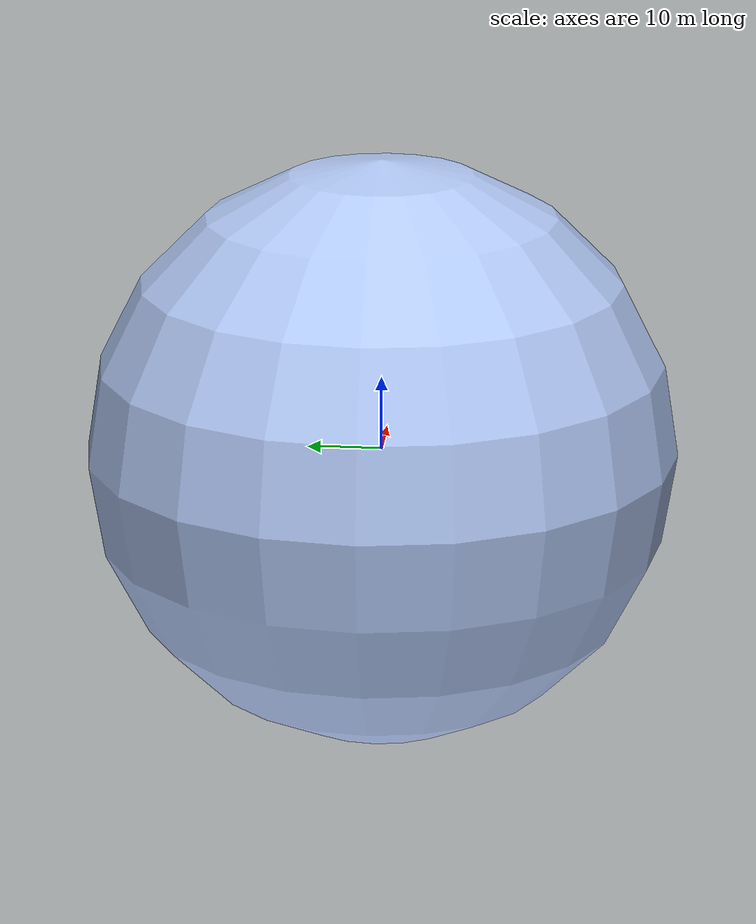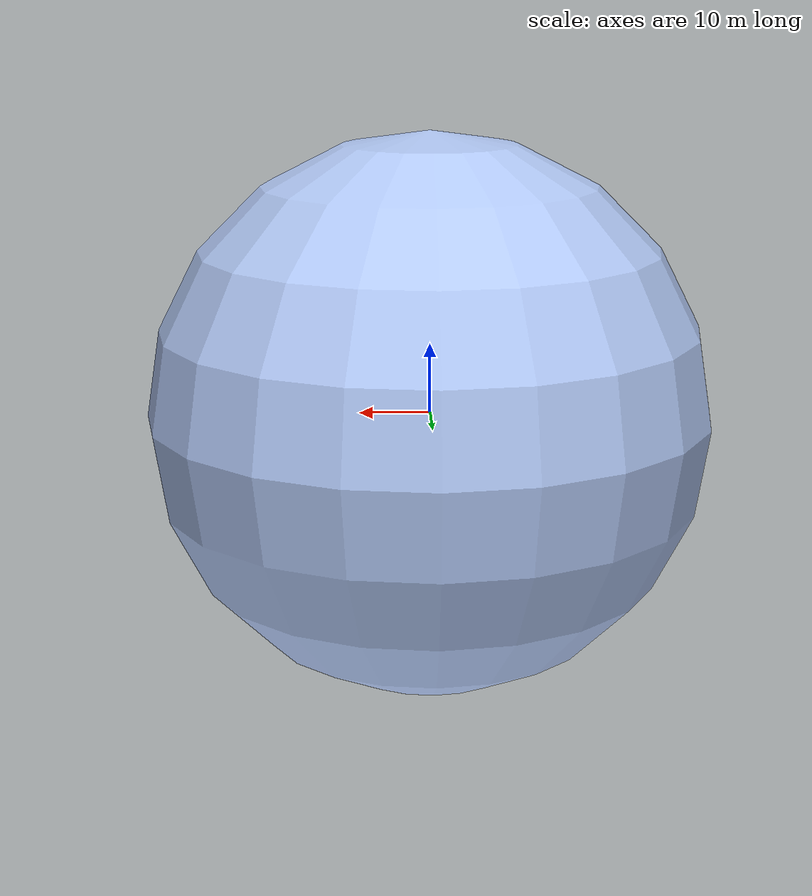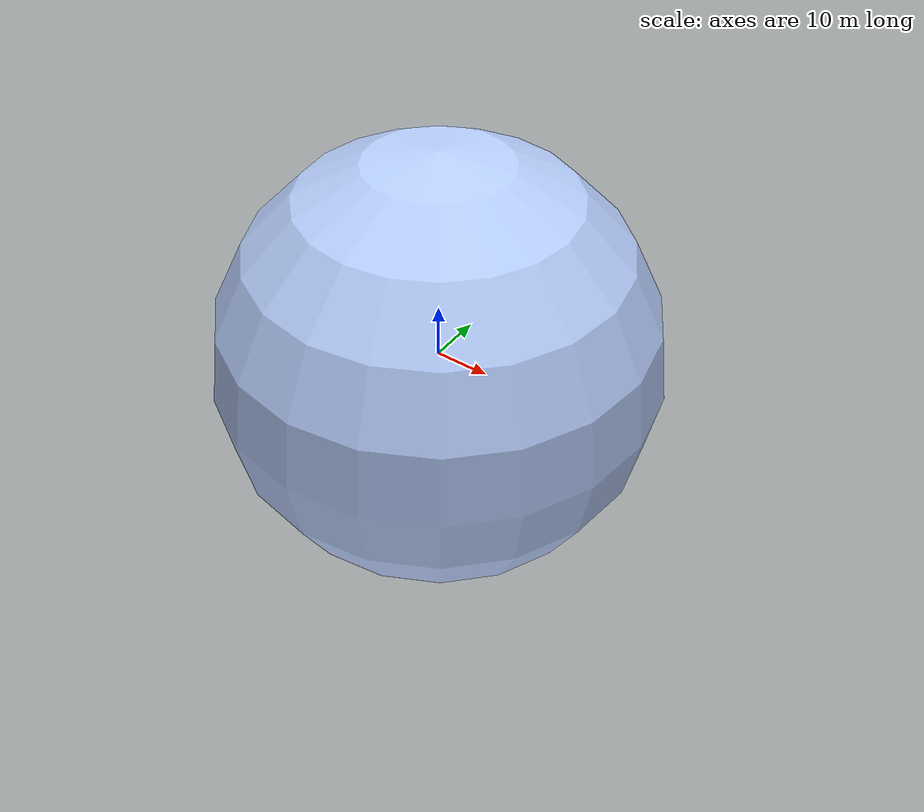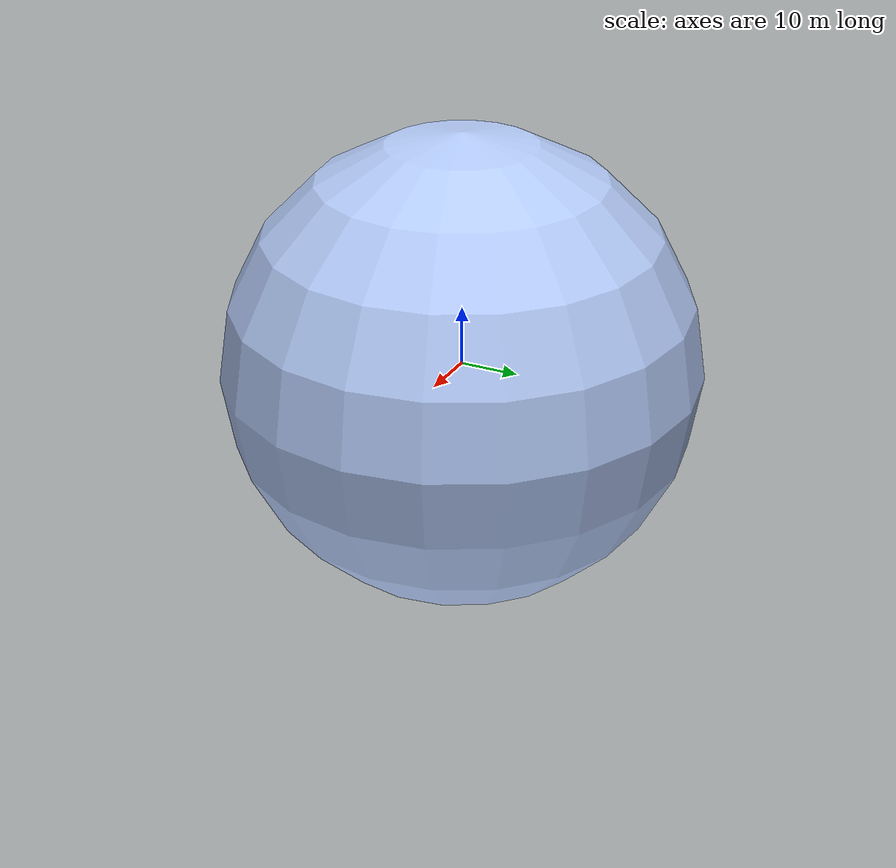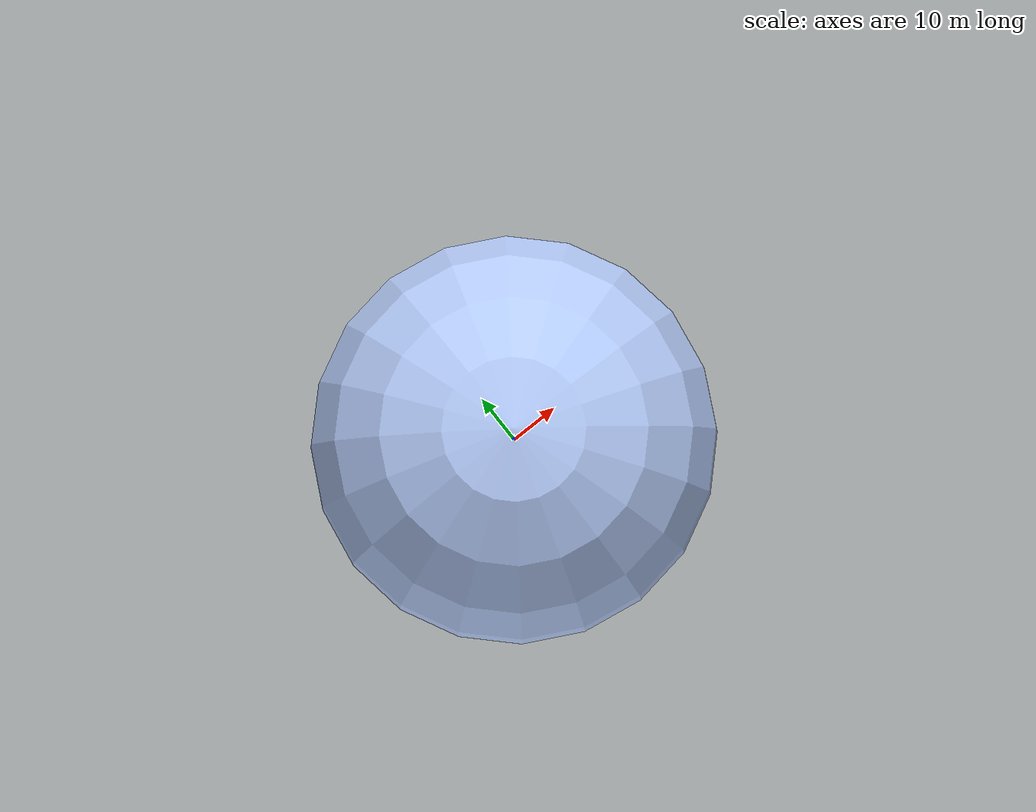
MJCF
<?xml version="1.0" encoding="UTF-8"?>
<mujoco model="chase_arena">
    <compiler angle="degree" coordinate="local" inertiafromgeom="true"/>
    <option timestep="0.02" integrator="RK4" gravity="0 0 -4.5" density="1000" viscosity="0"/>
    <size njmax="200" nconmax="100"/>

    <visual>
        <map znear="0.01" zfar="60" fogstart="20" fogend="55" haze="0.4"/>
        <global offheight="2048" offwidth="2048" fovy="55"/>
        <quality shadowsize="4096"/>
    </visual>

    <asset>
        <texture name="sky_tex" type="skybox" builtin="gradient" rgb1="0.55 0.68 0.95" rgb2="0.86 0.91 1.0" width="2048" height="2048"/>
        <texture name="cloud_tex" type="2d" builtin="checker" rgb1="0.95 0.97 1.0" rgb2="0.78 0.84 0.9" width="1024" height="1024"/>
        <texture name="grass_tex" type="2d" builtin="checker" rgb1="0.18 0.42 0.14" rgb2="0.12 0.32 0.1" width="2048" height="2048"/>
        <texture name="flower_tex" type="2d" builtin="checker" rgb1="0.9 0.45 0.6" rgb2="0.95 0.92 0.4" width="512" height="512"/>
        <texture name="armor_tex" type="cube" builtin="flat" rgb1="0.75 0.78 0.83" width="256" height="256"/>
        <texture name="tom_fur_tex" type="cube" builtin="flat" rgb1="0.36 0.43 0.58" width="256" height="256"/>
        <texture name="tom_face_tex" type="cube" builtin="flat" rgb1="0.78 0.82 0.88" width="256" height="256"/>
        <texture name="tom_belly_tex" type="cube" builtin="flat" rgb1="0.92 0.94 0.95" width="256" height="256"/>
        <texture name="tom_inner_tex" type="cube" builtin="flat" rgb1="0.96 0.79 0.83" width="256" height="256"/>
        <texture name="jerry_fur_tex" type="cube" builtin="flat" rgb1="0.58 0.36 0.18" width="256" height="256"/>
        <texture name="jerry_face_tex" type="cube" builtin="flat" rgb1="0.82 0.62 0.35" width="256" height="256"/>
        <texture name="jerry_belly_tex" type="cube" builtin="flat" rgb1="0.95 0.8 0.55" width="256" height="256"/>
        <texture name="jerry_inner_tex" type="cube" builtin="flat" rgb1="0.98 0.77 0.65" width="256" height="256"/>
        <texture name="sun_tex" type="cube" builtin="flat" rgb1="1 0.93 0.58" width="128" height="128"/>
        <texture name="mountain_tex" type="2d" builtin="checker" rgb1="0.38 0.44 0.5" rgb2="0.28 0.32 0.36" width="512" height="512"/>
        <texture name="mountain_peak_tex" type="2d" builtin="checker" rgb1="0.86 0.9 0.95" rgb2="0.74 0.8 0.86" width="256" height="256"/>
        <texture name="bush_tex" type="2d" builtin="checker" rgb1="0.18 0.38 0.15" rgb2="0.12 0.28 0.11" width="256" height="256"/>
        <texture name="distant_field_tex" type="cube" builtin="flat" rgb1="0.38 0.58 0.3" width="256" height="256"/>
        <material name="sky_mat" texture="sky_tex" reflectance="0.42" shininess="0.3"/>
        <material name="cloud_mat" texture="cloud_tex" texrepeat="2 1" reflectance="0.12" shininess="0.05" rgba="1 1 1 0.28"/>
        <material name="grass_mat" texture="grass_tex" texrepeat="10 10" specular="0.05" shininess="0.15" reflectance="0.07" emission="0.01"/>
        <material name="flower_mat" texture="flower_tex" texrepeat="12 12" specular="0.12" shininess="0.35"/>
        <material name="tom_fur_mat" texture="tom_fur_tex" specular="0.18" shininess="0.32" reflectance="0.08" emission="0.01"/>
        <material name="tom_face_mat" texture="tom_face_tex" specular="0.1" shininess="0.25" reflectance="0.06" emission="0.01"/>
        <material name="tom_belly_mat" texture="tom_belly_tex" specular="0.08" shininess="0.22" reflectance="0.05"/>
        <material name="tom_inner_mat" texture="tom_inner_tex" specular="0.05" shininess="0.18" reflectance="0.03"/>
        <material name="tom_nose_mat" rgba="0.85 0.46 0.55 1" specular="0.15" shininess="0.25" reflectance="0.04"/>
        <material name="jerry_fur_mat" texture="jerry_fur_tex" specular="0.16" shininess="0.28" reflectance="0.07" emission="0.01"/>
        <material name="jerry_face_mat" texture="jerry_face_tex" specular="0.12" shininess="0.26" reflectance="0.06"/>
        <material name="jerry_belly_mat" texture="jerry_belly_tex" specular="0.08" shininess="0.2" reflectance="0.05"/>
        <material name="jerry_inner_mat" texture="jerry_inner_tex" specular="0.06" shininess="0.2" reflectance="0.04"/>
        <material name="jerry_nose_mat" rgba="0.6 0.27 0.22 1" specular="0.18" shininess="0.26" reflectance="0.05"/>
        <material name="sun_mat" texture="sun_tex" emission="0.45" reflectance="0.3" shininess="0.1"/>
        <material name="mountain_mat" texture="mountain_tex" specular="0.08" shininess="0.2" reflectance="0.05"/>
        <material name="mountain_peak_mat" texture="mountain_peak_tex" specular="0.12" shininess="0.25" reflectance="0.07"/>
        <material name="bush_mat" texture="bush_tex" specular="0.04" shininess="0.12" reflectance="0.03" emission="0.02"/>
        <material name="distant_field_mat" texture="distant_field_tex" specular="0.03" shininess="0.08" reflectance="0.02"/>
        <material name="boundary_mat" rgba="0.7 0.7 0.7 0.25" texture="armor_tex" specular="0.28" shininess="0.55"/>
    </asset>

    <worldbody>
        <light pos="4 -3 6" dir="-0.4 0.3 -1" directional="true" diffuse="0.9 0.9 1" specular="0.6 0.6 0.7" cutoff="50" exponent="4"/>
        <light pos="-3 4 5" dir="0.3 -0.4 -1" directional="true" diffuse="1 0.9 0.8" specular="0.6 0.5 0.4" cutoff="60" exponent="3"/>
        <geom name="sun" type="sphere" size="0.9" pos="-10 12 18" material="sun_mat" contype="0" conaffinity="0" group="1"/>
        <geom name="sky_dome" type="sphere" size="40" material="sky_mat" contype="0" conaffinity="0" solimp="0 0 0" solref="1 1" group="1"/>
        <geom name="cloud_layer" type="sphere" size="39.5" material="cloud_mat" contype="0" conaffinity="0" solimp="0 0 0" solref="1 1" group="1"/>
        <geom name="cloud_puff_east" type="ellipsoid" size="1.6 2.4 0.9" pos="7 -6 6.5" material="cloud_mat" contype="0" conaffinity="0" group="1"/>
        <geom name="cloud_puff_west" type="ellipsoid" size="1.9 2.6 1.0" pos="-8 5 7.2" material="cloud_mat" contype="0" conaffinity="0" group="1"/>
        <geom name="floor" type="plane" size="12 12 0.1" material="grass_mat" friction="1 0.01 0.01"/>
        <geom name="boundary" type="cylinder" size="5.5 0.04" material="boundary_mat" contype="0" conaffinity="0" group="2"/>

        <geom name="mountain_left" type="ellipsoid" size="3.0 2.4 3.6" pos="-11.5 -4.5 1.8" material="mountain_mat" contype="0" conaffinity="0" group="1"/>
        <geom name="mountain_left_peak" type="ellipsoid" size="1.3 1.1 1.5" pos="-11.5 -4.5 3.6" material="mountain_peak_mat" contype="0" conaffinity="0" group="1"/>
        <geom name="mountain_right" type="ellipsoid" size="3.4 2.8 4.0" pos="10.8 5.6 1.9" material="mountain_mat" contype="0" conaffinity="0" group="1"/>
        <geom name="mountain_right_peak" type="ellipsoid" size="1.4 1.2 1.7" pos="10.8 5.6 3.9" material="mountain_peak_mat" contype="0" conaffinity="0" group="1"/>
        <geom name="mountain_center" type="ellipsoid" size="2.7 2.7 3.2" pos="0 -11.8 1.6" material="mountain_mat" contype="0" conaffinity="0" group="1"/>
        <geom name="mountain_center_peak" type="ellipsoid" size="1.2 1.2 1.4" pos="0 -11.8 3.3" material="mountain_peak_mat" contype="0" conaffinity="0" group="1"/>
        <geom name="bush_cluster_north" type="ellipsoid" size="0.65 1.2 0.55" pos="3.6 8.2 0.45" material="bush_mat" contype="0" conaffinity="0" group="2"/>
        <geom name="bush_cluster_north_inner" type="ellipsoid" size="0.6 1.0 0.5" pos="4.4 7.6 0.4" material="bush_mat" contype="0" conaffinity="0" group="2"/>
        <geom name="bush_cluster_west" type="ellipsoid" size="1.1 0.6 0.45" pos="-8.4 -4.2 0.4" material="bush_mat" contype="0" conaffinity="0" group="2"/>

        <body name="blue" pos="0 0 0.35">
            <freejoint name="blue_free"/>
            <geom name="blue_boot" type="cylinder" pos="0 0 0.12" size="0.17 0.12" material="tom_fur_mat" friction="0.9 0.05 0.05" density="650"/>
            <geom name="blue_leg" type="capsule" fromto="0 0 0.12 0 0 0.45" size="0.12" material="tom_fur_mat" friction="0.9 0.05 0.05" density="520"/>
            <geom name="blue_torso" type="capsule" fromto="0 0 0.45 0 0 0.78" size="0.14" material="tom_fur_mat" friction="0.9 0.05 0.05" density="480"/>
            <geom name="blue_belly" type="sphere" pos="0 0.06 0.55" size="0.16" material="tom_belly_mat" contype="0" conaffinity="0" density="150"/>
            <geom name="blue_shoulder" type="capsule" fromto="-0.24 0 0.72 0.24 0 0.72" size="0.07" material="tom_fur_mat" friction="0.9 0.05 0.05" density="460"/>
            <geom name="blue_arm_left" type="capsule" fromto="-0.24 0 0.72 -0.34 0 0.4" size="0.06" material="tom_fur_mat" friction="0.9 0.05 0.05" density="420"/>
            <geom name="blue_arm_right" type="capsule" fromto="0.24 0 0.72 0.34 0 0.4" size="0.06" material="tom_fur_mat" friction="0.9 0.05 0.05" density="420"/>
            <geom name="blue_tail" type="capsule" fromto="0 -0.06 0.6 0 -0.46 0.82" size="0.04" material="tom_fur_mat" friction="0.9 0.05 0.05" density="200"/>
            <geom name="blue_head" type="sphere" pos="0 0 0.94" size="0.13" material="tom_face_mat" friction="0.9 0.05 0.05" density="280"/>
            <geom name="blue_muzzle" type="sphere" pos="0 0.09 0.9" size="0.09" material="tom_belly_mat" contype="0" conaffinity="0" density="160"/>
            <geom name="blue_nose" type="sphere" pos="0 0.16 0.94" size="0.03" material="tom_nose_mat" contype="0" conaffinity="0" density="100"/>
            <geom name="blue_ear_left" type="capsule" fromto="-0.08 0.02 1.02 -0.16 0.18 1.18" size="0.035" material="tom_fur_mat" friction="0.9 0.05 0.05" density="180"/>
            <geom name="blue_ear_right" type="capsule" fromto="0.08 0.02 1.02 0.16 0.18 1.18" size="0.035" material="tom_fur_mat" friction="0.9 0.05 0.05" density="180"/>
            <geom name="blue_inner_ear_left" type="capsule" fromto="-0.075 0.04 1.03 -0.135 0.17 1.17" size="0.02" material="tom_inner_mat" contype="0" conaffinity="0" density="80"/>
            <geom name="blue_inner_ear_right" type="capsule" fromto="0.075 0.04 1.03 0.135 0.17 1.17" size="0.02" material="tom_inner_mat" contype="0" conaffinity="0" density="80"/>
            <geom name="blue_whisker_left_upper" type="capsule" fromto="-0.03 0.14 0.93 -0.18 0.2 0.96" size="0.01" material="tom_belly_mat" contype="0" conaffinity="0" density="50"/>
            <geom name="blue_whisker_left_lower" type="capsule" fromto="-0.03 0.12 0.9 -0.17 0.14 0.88" size="0.01" material="tom_belly_mat" contype="0" conaffinity="0" density="50"/>
            <geom name="blue_whisker_right_upper" type="capsule" fromto="0.03 0.14 0.93 0.18 0.2 0.96" size="0.01" material="tom_belly_mat" contype="0" conaffinity="0" density="50"/>
            <geom name="blue_whisker_right_lower" type="capsule" fromto="0.03 0.12 0.9 0.17 0.14 0.88" size="0.01" material="tom_belly_mat" contype="0" conaffinity="0" density="50"/>
            <geom name="blue_snout" type="cylinder" pos="0 0.11 0.94" size="0.06 0.018" material="tom_belly_mat" contype="0" conaffinity="0" density="150"/>
        </body>

        <body name="orange" pos="2.5 0 0.35">
            <freejoint name="orange_free"/>
            <geom name="orange_boot" type="cylinder" pos="0 0 0.12" size="0.17 0.12" material="jerry_fur_mat" friction="0.9 0.05 0.05" density="650"/>
            <geom name="orange_leg" type="capsule" fromto="0 0 0.12 0 0 0.45" size="0.12" material="jerry_fur_mat" friction="0.9 0.05 0.05" density="520"/>
            <geom name="orange_torso" type="capsule" fromto="0 0 0.45 0 0 0.78" size="0.14" material="jerry_fur_mat" friction="0.9 0.05 0.05" density="480"/>
            <geom name="orange_belly" type="sphere" pos="0 0.05 0.56" size="0.18" material="jerry_belly_mat" contype="0" conaffinity="0" density="140"/>
            <geom name="orange_shoulder" type="capsule" fromto="-0.24 0 0.72 0.24 0 0.72" size="0.07" material="jerry_fur_mat" friction="0.9 0.05 0.05" density="460"/>
            <geom name="orange_arm_left" type="capsule" fromto="-0.24 0 0.72 -0.34 0 0.4" size="0.06" material="jerry_fur_mat" friction="0.9 0.05 0.05" density="420"/>
            <geom name="orange_arm_right" type="capsule" fromto="0.24 0 0.72 0.34 0 0.4" size="0.06" material="jerry_fur_mat" friction="0.9 0.05 0.05" density="420"/>
            <geom name="orange_tail" type="capsule" fromto="0 -0.05 0.62 0 -0.6 0.68" size="0.03" material="jerry_fur_mat" friction="0.9 0.05 0.05" density="180"/>
            <geom name="orange_head" type="sphere" pos="0 0 0.93" size="0.12" material="jerry_face_mat" friction="0.9 0.05 0.05" density="260"/>
            <geom name="orange_muzzle" type="sphere" pos="0 0.09 0.89" size="0.085" material="jerry_belly_mat" contype="0" conaffinity="0" density="140"/>
            <geom name="orange_nose" type="sphere" pos="0 0.14 0.93" size="0.025" material="jerry_nose_mat" contype="0" conaffinity="0" density="90"/>
            <geom name="orange_ear_left" type="sphere" pos="-0.16 0.02 0.99" size="0.09" material="jerry_face_mat" friction="0.9 0.05 0.05" density="120"/>
            <geom name="orange_ear_right" type="sphere" pos="0.16 0.02 0.99" size="0.09" material="jerry_face_mat" friction="0.9 0.05 0.05" density="120"/>
            <geom name="orange_inner_ear_left" type="sphere" pos="-0.16 0.04 1.0" size="0.055" material="jerry_inner_mat" contype="0" conaffinity="0" density="70"/>
            <geom name="orange_inner_ear_right" type="sphere" pos="0.16 0.04 1.0" size="0.055" material="jerry_inner_mat" contype="0" conaffinity="0" density="70"/>
            <geom name="orange_mask" type="cylinder" pos="0 -0.07 0.93" size="0.07 0.015" material="jerry_belly_mat" contype="0" conaffinity="0" density="130"/>
        </body>
    </worldbody>
</mujoco>
